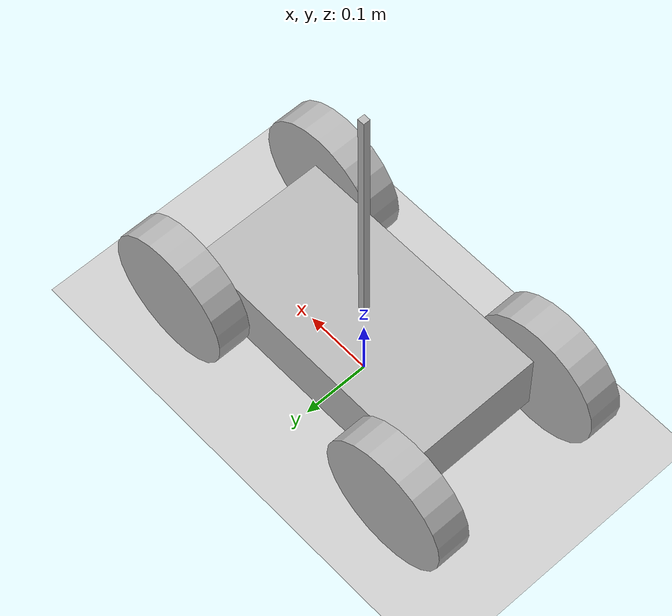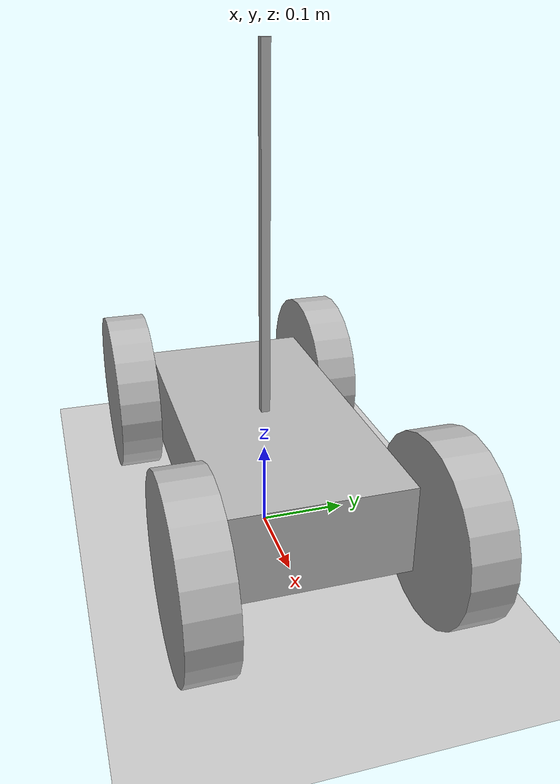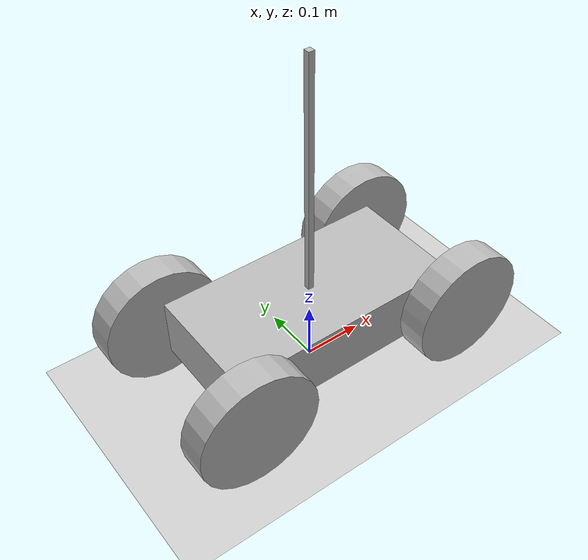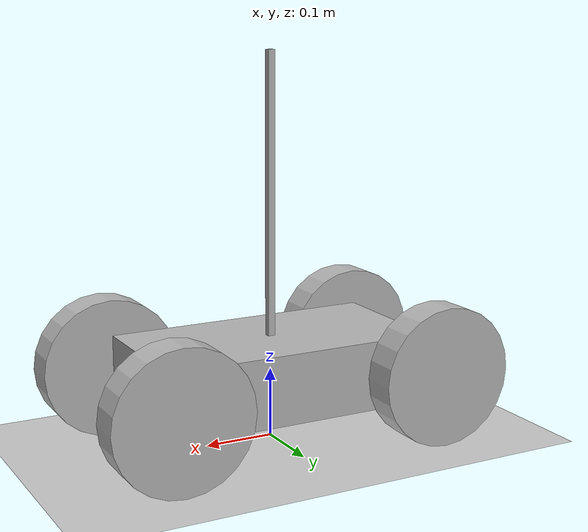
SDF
<?xml version="1.0"?>
<sdf version="1.4">
  <world name="default">
  <plugin name="model_push" filename="libsimple_world_plugin.so"/>
    <!-- Ground Plane -->
    <include>
      <uri>model://ground_plane</uri>
    </include>

    <include>
      <uri>model://sun</uri>
    </include>

      <model name="my_robot">
	<static>false</static>
        <link name='chassis'>
    	<inertial>
      	  <mass>10.0</mass>
          <inertia> <ixx>0.0416666666</ixx>
	   	   <ixy>0.0</ixy>
		   <ixz>0.0</ixz>
		   <iyy>0.1416666666</iyy>
		   <iyz>0.0</iyz>
		   <izz>0.1666666666</izz>
           </inertia>
        </inertial>
          <pose>0 0 .1 0 0 0</pose>
          <collision name='collision'>
            <geometry>
              <box>
                <size>.4 .2 .1</size>
              </box>
            </geometry>
          </collision>
          <visual name='visual'>
            <geometry>
              <box>
                <size>.4 .2 .1</size>
              </box>
            </geometry>
          </visual>
      </link>

       <link name='inv_pendulam'>
    	<inertial>
      	  <mass>1.0</mass>
          <inertia> <ixx>0.0133</ixx>
	   	   <ixy>0.0</ixy>
		   <ixz>0.0</ixz>
		   <iyy>0.0133</iyy>
		   <iyz>0.0</iyz>
		   <izz>0.00001</izz>
           </inertia>
        </inertial>
          <pose>0 0 .35 0 0 0</pose>
          <collision name='collision'>
            <geometry>
              <box>
                <size>.01 .01 .4</size>
              </box>
            </geometry>
          </collision>

          <visual name='visual'>
            <geometry>
              <box>
                <size>.01 .01 .4</size>
              </box>
            </geometry>
          </visual>
      </link>

      <link name="left_wheel">
  	<inertial>
      	  <mass>10.0</mass>
          <inertia> <ixx>0.02708333333</ixx>
	   	   <ixy>0.0</ixy>
		   <ixz>0.0</ixz>
		   <iyy>0.02708333333</iyy>
		   <iyz>0.0</iyz>
		   <izz>0.05</izz>
           </inertia>
        </inertial>
        <pose>0.2 0.13 0.1 0 1.5707 1.5707</pose>
        <collision name="collision">
          <geometry>
            <cylinder>
              <radius>.1</radius>
              <length>.05</length>
            </cylinder>
          </geometry>
        </collision>
        <visual name="visual">
          <geometry>
            <cylinder>
              <radius>.1</radius>
              <length>.05</length>
            </cylinder>
          </geometry>
        </visual>
      </link>

      <link name="left_wheel_2">
  	<inertial>
      	  <mass>10.0</mass>
          <inertia> <ixx>0.02708333333</ixx>
	   	   <ixy>0.0</ixy>
		   <ixz>0.0</ixz>
		   <iyy>0.02708333333</iyy>
		   <iyz>0.0</iyz>
		   <izz>0.05</izz>
           </inertia>
        </inertial>
        <pose>-0.2 0.13 0.1 0 1.5707 1.5707</pose>
        <collision name="collision">
          <geometry>
            <cylinder>
              <radius>.1</radius>
              <length>.05</length>
            </cylinder>
          </geometry>
        </collision>
        <visual name="visual">
          <geometry>
            <cylinder>
              <radius>.1</radius>
              <length>.05</length>
            </cylinder>
          </geometry>
        </visual>
      </link>

      <link name="right_wheel">
  	<inertial>
      	  <mass>10.0</mass>
          <inertia> <ixx>0.02708333333</ixx>
	   	   <ixy>0.0</ixy>
		   <ixz>0.0</ixz>
		   <iyy>0.02708333333</iyy>
		   <iyz>0.0</iyz>
		   <izz>0.05</izz>
           </inertia>
        </inertial>
        <pose>0.2 -0.13 0.1 0 1.5707 1.5707</pose>
        <collision name="collision">
          <geometry>
            <cylinder>
              <radius>.1</radius>
              <length>.05</length>
            </cylinder>
          </geometry>
        </collision>
        <visual name="visual">
          <geometry>
            <cylinder>
              <radius>.1</radius>
              <length>.05</length>
            </cylinder>
          </geometry>
        </visual>
      </link>

      <link name="right_wheel_2">
  	<inertial>
      	  <mass>10.0</mass>
          <inertia> <ixx>0.02708333333</ixx>
	   	   <ixy>0.0</ixy>
		   <ixz>0.0</ixz>
		   <iyy>0.02708333333</iyy>
		   <iyz>0.0</iyz>
		   <izz>0.05</izz>
           </inertia>
        </inertial>
        <pose>-0.2 -0.13 0.1 0 1.5707 1.5707</pose>
        <collision name="collision">
          <geometry>
            <cylinder>
              <radius>.1</radius>
              <length>.05</length>
            </cylinder>
          </geometry>
        </collision>
        <visual name="visual">
          <geometry>
            <cylinder>
              <radius>.1</radius>
              <length>.05</length>
            </cylinder>
          </geometry>
        </visual>
      </link>

      <joint type="revolute" name="pendulam_hinge">
	<pose>0 0 -0.2 0 0 0</pose>
        <child>inv_pendulam</child>
        <parent>chassis</parent>
        <axis>
          <xyz>0 1 0</xyz>
        </axis>
      </joint>

      <joint type="revolute" name="left_wheel_hinge">
        <child>left_wheel</child>
        <parent>chassis</parent>
        <axis>
          <xyz>0 1 0</xyz>
        </axis>
      </joint>

      <joint type="revolute" name="right_wheel_hinge">
        <child>right_wheel</child>
        <parent>chassis</parent>
        <axis>
          <xyz>0 1 0</xyz>
        </axis>
      </joint>

      <joint type="revolute" name="left_wheel_hinge_2">
        <child>left_wheel_2</child>
        <parent>chassis</parent>
        <axis>
          <xyz>0 1 0</xyz>
        </axis>
      </joint>

      <joint type="revolute" name="right_wheel_hinge_2">
        <child>right_wheel_2</child>
        <parent>chassis</parent>
        <axis>
          <xyz>0 1 0</xyz>
        </axis>
      </joint>
  <transmission name="tran1">
    <type>transmission_interface/SimpleTransmission</type>
    <joint name="pendulam_hinge">
      <hardwareInterface>EffortJointInterface</hardwareInterface>
    </joint>
    <actuator name="motor1">
      <hardwareInterface>EffortJointInterface</hardwareInterface>
      <mechanicalReduction>1</mechanicalReduction>
    </actuator>
  </transmission>

      <plugin name="model_measure" filename="libmodel_measure.so"/>
      </model>
  </world>
</sdf>
